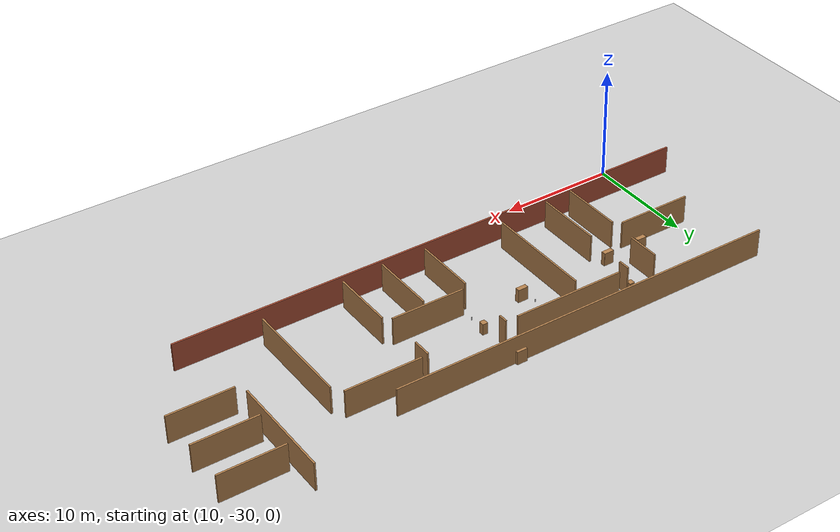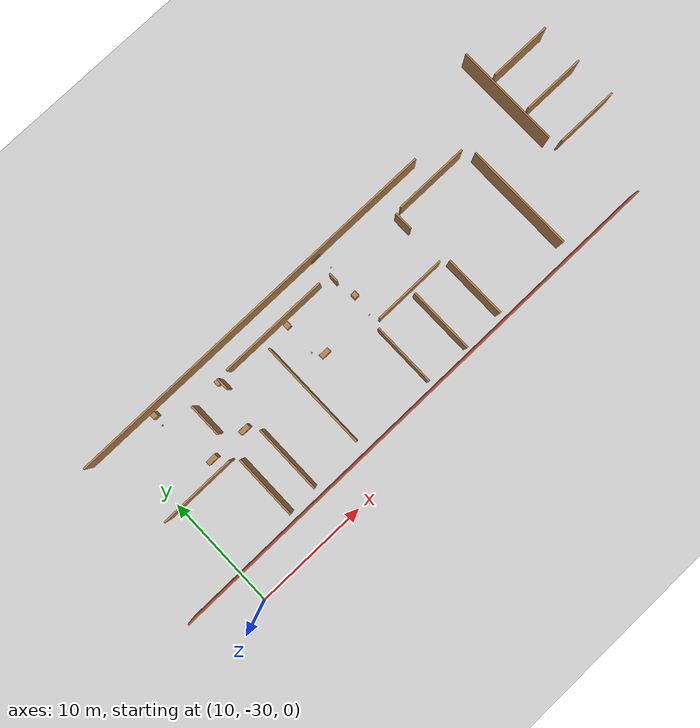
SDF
<sdf version="1.6">
 <world name="default">
  <model name="ground_plane">
   <static>1</static>
   <link name="link">
    <collision name="collision">
     <geometry><plane><normal>0 0 1</normal><size>100 100</size></plane></geometry>
     <surface><friction><ode><mu>100</mu><mu2>50</mu2></ode></friction></surface>
    </collision>
    <visual name="visual">
     <cast_shadows>0</cast_shadows>
     <geometry><plane><normal>0 0 1</normal><size>100 100</size></plane></geometry>
     <material>
      <script><uri>file://media/materials/scripts/gazebo.material</uri><name>Gazebo/Grey</name></script>
     </material>
    </visual>
   </link>
  </model>
  <model name="floorPlan">
   <pose>6.7155 -5.3556 0 0 -0 0</pose>
   <link name="Wall_109">
    <collision name="Wall_109_Collision">
     <geometry><box><size>9.79 0.15 2.5</size></box></geometry>
     <pose>0 0 1.25 0 -0 0</pose>
    </collision>
    <visual name="Wall_109_Visual">
     <pose>0 0 1.25 0 -0 0</pose>
     <geometry><box><size>9.79 0.15 2.5</size></box></geometry>
     <material>
      <script><uri>file://media/materials/scripts/gazebo.material</uri><name>Gazebo/Wood</name></script>
      <ambient>1 1 1 1</ambient>
     </material>
     <meta><layer>0</layer></meta>
    </visual>
    <pose>39.004 -15.7975 0 0 0 -1.5708</pose>
   </link>
   <link name="Wall_111">
    <collision name="Wall_111_Collision">
     <geometry><box><size>6.66 0.15 2.5</size></box></geometry>
     <pose>0 0 1.25 0 -0 0</pose>
    </collision>
    <visual name="Wall_111_Visual">
     <pose>0 0 1.25 0 -0 0</pose>
     <geometry><box><size>6.66 0.15 2.5</size></box></geometry>
     <material>
      <script><uri>file://media/materials/scripts/gazebo.material</uri><name>Gazebo/Wood</name></script>
      <ambient>1 1 1 1</ambient>
     </material>
     <meta><layer>0</layer></meta>
    </visual>
    <pose>35.079 -9.99746 0 0 -0 3.14159</pose>
   </link>
   <link name="Wall_112">
    <collision name="Wall_112_Collision">
     <geometry><box><size>1.67 0.15 2.5</size></box></geometry>
     <pose>0 0 1.25 0 -0 0</pose>
    </collision>
    <visual name="Wall_112_Visual">
     <pose>0 0 1.25 0 -0 0</pose>
     <geometry><box><size>1.67 0.15 2.5</size></box></geometry>
     <material>
      <script><uri>file://media/materials/scripts/gazebo.material</uri><name>Gazebo/Wood</name></script>
      <ambient>1 1 1 1</ambient>
     </material>
     <meta><layer>0</layer></meta>
    </visual>
    <pose>31.154 -10.9225 0 0 0 -1.5708</pose>
   </link>
   <link name="Wall_114">
    <collision name="Wall_114_Collision">
     <geometry><box><size>5.62 0.15 2.5</size></box></geometry>
     <pose>0 0 1.25 0 -0 0</pose>
    </collision>
    <visual name="Wall_114_Visual">
     <pose>0 0 1.25 0 -0 0</pose>
     <geometry><box><size>5.62 0.15 2.5</size></box></geometry>
     <material>
      <script><uri>file://media/materials/scripts/gazebo.material</uri><name>Gazebo/Wood</name></script>
      <ambient>1 1 1 1</ambient>
     </material>
     <meta><layer>0</layer></meta>
    </visual>
    <pose>31.5938 -18.4328 0 0 -0 1.5708</pose>
   </link>
   <link name="Wall_115">
    <collision name="Wall_115_Collision">
     <geometry><box><size>6.46 0.15 2.5</size></box></geometry>
     <pose>0 0 1.25 0 -0 0</pose>
    </collision>
    <visual name="Wall_115_Visual">
     <pose>0 0 1.25 0 -0 0</pose>
     <geometry><box><size>6.46 0.15 2.5</size></box></geometry>
     <material>
      <script><uri>file://media/materials/scripts/gazebo.material</uri><name>Gazebo/Wood</name></script>
      <ambient>1 1 1 1</ambient>
     </material>
     <meta><layer>0</layer></meta>
    </visual>
    <pose>27.7938 -15.1328 0 0 -0 3.14159</pose>
   </link>
   <link name="Wall_116">
    <collision name="Wall_116_Collision">
     <geometry><box><size>5.62 0.15 2.5</size></box></geometry>
     <pose>0 0 1.25 0 -0 0</pose>
    </collision>
    <visual name="Wall_116_Visual">
     <pose>0 0 1.25 0 -0 0</pose>
     <geometry><box><size>5.62 0.15 2.5</size></box></geometry>
     <material>
      <script><uri>file://media/materials/scripts/gazebo.material</uri><name>Gazebo/Wood</name></script>
      <ambient>1 1 1 1</ambient>
     </material>
     <meta><layer>0</layer></meta>
    </visual>
    <pose>23.9938 -18.4328 0 0 0 -1.5708</pose>
   </link>
   <link name="Wall_118">
    <collision name="Wall_118_Collision">
     <geometry><box><size>0.83 0.15 2.5</size></box></geometry>
     <pose>0 0 1.25 0 -0 0</pose>
    </collision>
    <visual name="Wall_118_Visual">
     <pose>0 0 1.25 0 -0 0</pose>
     <geometry><box><size>0.83 0.15 2.5</size></box></geometry>
     <material>
      <script><uri>file://media/materials/scripts/gazebo.material</uri><name>Gazebo/Wood</name></script>
      <ambient>1 1 1 1</ambient>
     </material>
     <meta><layer>0</layer></meta>
    </visual>
    <pose>24.1778 -10.3922 0 0 0 -1.5708</pose>
   </link>
   <link name="Wall_120">
    <collision name="Wall_120_Collision">
     <geometry><box><size>9.79 0.15 2.5</size></box></geometry>
     <pose>0 0 1.25 0 -0 0</pose>
    </collision>
    <visual name="Wall_120_Visual">
     <pose>0 0 1.25 0 -0 0</pose>
     <geometry><box><size>9.79 0.15 2.5</size></box></geometry>
     <material>
      <script><uri>file://media/materials/scripts/gazebo.material</uri><name>Gazebo/Wood</name></script>
      <ambient>1 1 1 1</ambient>
     </material>
     <meta><layer>0</layer></meta>
    </visual>
    <pose>18.2324 -9.96721 0 0 -0 3.14159</pose>
   </link>
   <link name="Wall_121">
    <collision name="Wall_121_Collision">
     <geometry><box><size>1.04 0.15 2.5</size></box></geometry>
     <pose>0 0 1.25 0 -0 0</pose>
    </collision>
    <visual name="Wall_121_Visual">
     <pose>0 0 1.25 0 -0 0</pose>
     <geometry><box><size>1.04 0.15 2.5</size></box></geometry>
     <material>
      <script><uri>file://media/materials/scripts/gazebo.material</uri><name>Gazebo/Wood</name></script>
      <ambient>1 1 1 1</ambient>
     </material>
     <meta><layer>0</layer></meta>
    </visual>
    <pose>12.4324 -10.5172 0 0 0 -1.5708</pose>
   </link>
   <link name="Wall_123">
    <collision name="Wall_123_Collision">
     <geometry><box><size>9.79 0.15 2.5</size></box></geometry>
     <pose>0 0 1.25 0 -0 0</pose>
    </collision>
    <visual name="Wall_123_Visual">
     <pose>0 0 1.25 0 -0 0</pose>
     <geometry><box><size>9.79 0.15 2.5</size></box></geometry>
     <material>
      <script><uri>file://media/materials/scripts/gazebo.material</uri><name>Gazebo/Wood</name></script>
      <ambient>1 1 1 1</ambient>
     </material>
     <meta><layer>0</layer></meta>
    </visual>
    <pose>16.8339 -15.8579 0 0 0 -1.5708</pose>
   </link>
   <link name="Wall_125">
    <collision name="Wall_125_Collision">
     <geometry><box><size>6.04 0.15 2.5</size></box></geometry>
     <pose>0 0 1.25 0 -0 0</pose>
    </collision>
    <visual name="Wall_125_Visual">
     <pose>0 0 1.25 0 -0 0</pose>
     <geometry><box><size>6.04 0.15 2.5</size></box></geometry>
     <material>
      <script><uri>file://media/materials/scripts/gazebo.material</uri><name>Gazebo/Wood</name></script>
      <ambient>1 1 1 1</ambient>
     </material>
     <meta><layer>0</layer></meta>
    </visual>
    <pose>12.1458 -18.0541 0 0 0 -1.5708</pose>
   </link>
   <link name="Wall_231">
    <collision name="Wall_231_Collision">
     <geometry><box><size>6.66 0.15 2.5</size></box></geometry>
     <pose>0 0 1.25 0 -0 0</pose>
    </collision>
    <visual name="Wall_231_Visual">
     <pose>0 0 1.25 0 -0 0</pose>
     <geometry><box><size>6.66 0.15 2.5</size></box></geometry>
     <material>
      <script><uri>file://media/materials/scripts/gazebo.material</uri><name>Gazebo/Wood</name></script>
      <ambient>1 1 1 1</ambient>
     </material>
     <meta><layer>0</layer></meta>
    </visual>
    <pose>5.60281 -15.1351 0 0 -0 0</pose>
   </link>
   <link name="Wall_232">
    <collision name="Wall_232_Collision">
     <geometry><box><size>5.62 0.15 2.5</size></box></geometry>
     <pose>0 0 1.25 0 -0 0</pose>
    </collision>
    <visual name="Wall_232_Visual">
     <pose>0 0 1.25 0 -0 0</pose>
     <geometry><box><size>5.62 0.15 2.5</size></box></geometry>
     <material>
      <script><uri>file://media/materials/scripts/gazebo.material</uri><name>Gazebo/Wood</name></script>
      <ambient>1 1 1 1</ambient>
     </material>
     <meta><layer>0</layer></meta>
    </visual>
    <pose>9.52781 -18.4351 0 0 0 -1.5708</pose>
   </link>
   <link name="Wall_238">
    <collision name="Wall_238_Collision">
     <geometry><box><size>2.92 0.15 2.5</size></box></geometry>
     <pose>0 0 1.25 0 -0 0</pose>
    </collision>
    <visual name="Wall_238_Visual">
     <pose>0 0 1.25 0 -0 0</pose>
     <geometry><box><size>2.92 0.15 2.5</size></box></geometry>
     <material>
      <script><uri>file://media/materials/scripts/gazebo.material</uri><name>Gazebo/Wood</name></script>
      <ambient>1 1 1 1</ambient>
     </material>
     <meta><layer>0</layer></meta>
    </visual>
    <pose>9.61374 -11.5957 0 0 0 -1.5708</pose>
   </link>
   <link name="Wall_242">
    <collision name="Wall_242_Collision">
     <geometry><box><size>5.62 0.15 2.5</size></box></geometry>
     <pose>0 0 1.25 0 -0 0</pose>
    </collision>
    <visual name="Wall_242_Visual">
     <pose>0 0 1.25 0 -0 0</pose>
     <geometry><box><size>5.62 0.15 2.5</size></box></geometry>
     <material>
      <script><uri>file://media/materials/scripts/gazebo.material</uri><name>Gazebo/Wood</name></script>
      <ambient>1 1 1 1</ambient>
     </material>
     <meta><layer>0</layer></meta>
    </visual>
    <pose>47.3564 -11.1866 0 0 -0 0</pose>
   </link>
   <link name="Wall_244">
    <collision name="Wall_244_Collision">
     <geometry><box><size>5.62 0.15 2.5</size></box></geometry>
     <pose>0 0 1.25 0 -0 0</pose>
    </collision>
    <visual name="Wall_244_Visual">
     <pose>0 0 1.25 0 -0 0</pose>
     <geometry><box><size>5.62 0.15 2.5</size></box></geometry>
     <material>
      <script><uri>file://media/materials/scripts/gazebo.material</uri><name>Gazebo/Wood</name></script>
      <ambient>1 1 1 1</ambient>
     </material>
     <meta><layer>0</layer></meta>
    </visual>
    <pose>47.3564 -7.44743 0 0 -0 0</pose>
   </link>
   <link name="Wall_267">
    <collision name="Wall_267_Collision">
     <geometry><box><size>5.83 0.15 2.5</size></box></geometry>
     <pose>0 0 1.25 0 -0 0</pose>
    </collision>
    <visual name="Wall_267_Visual">
     <pose>0 0 1.25 0 -0 0</pose>
     <geometry><box><size>5.83 0.15 2.5</size></box></geometry>
     <material>
      <script><uri>file://media/materials/scripts/gazebo.material</uri><name>Gazebo/Wood</name></script>
      <ambient>1 1 1 1</ambient>
     </material>
     <meta><layer>0</layer></meta>
    </visual>
    <pose>27.8996 -18.4924 0 0 0 -1.5708</pose>
   </link>
   <link name="Wall_28">
    <collision name="Wall_28_Collision">
     <geometry><box><size>34.75 0.15 2.5</size></box></geometry>
     <pose>0 0 1.25 0 -0 0</pose>
    </collision>
    <visual name="Wall_28_Visual">
     <pose>0 0 1.25 0 -0 0</pose>
     <geometry><box><size>34.75 0.15 2.5</size></box></geometry>
     <material>
      <script><uri>file://media/materials/scripts/gazebo.material</uri><name>Gazebo/Wood</name></script>
      <ambient>1 1 1 1</ambient>
     </material>
     <meta><layer>0</layer></meta>
    </visual>
    <pose>17.9067 -8.00732 0 0 0 -8e-06</pose>
   </link>
   <link name="Wall_83">
    <collision name="Wall_83_Collision">
     <geometry><box><size>9.37 0.15 2.5</size></box></geometry>
     <pose>0 0 1.25 0 -0 0</pose>
    </collision>
    <visual name="Wall_83_Visual">
     <pose>0 0 1.25 0 -0 0</pose>
     <geometry><box><size>9.37 0.15 2.5</size></box></geometry>
     <material>
      <script><uri>file://media/materials/scripts/gazebo.material</uri><name>Gazebo/Wood</name></script>
      <ambient>1 1 1 1</ambient>
     </material>
     <meta><layer>0</layer></meta>
    </visual>
    <pose>44.0649 -9.3253 0 0 0 -1.5708</pose>
   </link>
   <link name="Wall_84">
    <collision name="Wall_84_Collision">
     <geometry><box><size>5.62 0.15 2.5</size></box></geometry>
     <pose>0 0 1.25 0 -0 0</pose>
    </collision>
    <visual name="Wall_84_Visual">
     <pose>0 0 1.25 0 -0 0</pose>
     <geometry><box><size>5.62 0.15 2.5</size></box></geometry>
     <material>
      <script><uri>file://media/materials/scripts/gazebo.material</uri><name>Gazebo/Wood</name></script>
      <ambient>1 1 1 1</ambient>
     </material>
     <meta><layer>0</layer></meta>
    </visual>
    <pose>47.3649 -14.8753 0 0 -0 0</pose>
   </link>
   <link name="Wall_91">
    <collision name="Wall_91_Collision">
     <geometry><box><size>47.48 0.15 2.5</size></box></geometry>
     <pose>0 0 1.25 0 -0 0</pose>
    </collision>
    <visual name="Wall_91_Visual">
     <pose>0 0 1.25 0 -0 0</pose>
     <geometry><box><size>47.48 0.15 2.5</size></box></geometry>
     <material>
      <script><uri>file://media/materials/scripts/gazebo.material</uri><name>Gazebo/Bricks</name></script>
      <ambient>1 1 1 1</ambient>
     </material>
     <meta><layer>0</layer></meta>
    </visual>
    <pose>22.3468 -21.8566 0 0 -0 3.14159</pose>
   </link>
   <static>1</static>
  </model>
  <model name="bookshelf_1">
   <static>1</static>
   <link name="link">
    <inertial><mass>1</mass></inertial>
    <collision name="back">
     <pose>0 0.005 0.6 0 -0 0</pose>
     <geometry><box><size>0.9 0.01 1.2</size></box></geometry>
    </collision>
    <visual name="visual1">
     <pose>0 0.005 0.6 0 -0 0</pose>
     <geometry><box><size>0.9 0.01 1.2</size></box></geometry>
     <material>
      <script><uri>file://media/materials/scripts/gazebo.material</uri><name>Gazebo/Wood</name></script>
     </material>
    </visual>
    <collision name="left_side">
     <pose>0.45 -0.195 0.6 0 -0 0</pose>
     <geometry><box><size>0.02 0.4 1.2</size></box></geometry>
    </collision>
    <visual name="visual2">
     <pose>0.45 -0.195 0.6 0 -0 0</pose>
     <geometry><box><size>0.02 0.4 1.2</size></box></geometry>
     <material>
      <script><uri>file://media/materials/scripts/gazebo.material</uri><name>Gazebo/Wood</name></script>
     </material>
    </visual>
    <collision name="right_side">
     <pose>-0.45 -0.195 0.6 0 -0 0</pose>
     <geometry><box><size>0.02 0.4 1.2</size></box></geometry>
    </collision>
    <visual name="visual3">
     <pose>-0.45 -0.195 0.6 0 -0 0</pose>
     <geometry><box><size>0.02 0.4 1.2</size></box></geometry>
     <material>
      <script><uri>file://media/materials/scripts/gazebo.material</uri><name>Gazebo/Wood</name></script>
     </material>
    </visual>
    <collision name="bottom">
     <pose>0 -0.195 0.03 0 -0 0</pose>
     <geometry><box><size>0.88 0.4 0.06</size></box></geometry>
    </collision>
    <visual name="visual4">
     <pose>0 -0.195 0.03 0 -0 0</pose>
     <geometry><box><size>0.88 0.4 0.06</size></box></geometry>
     <material>
      <script><uri>file://media/materials/scripts/gazebo.material</uri><name>Gazebo/Wood</name></script>
     </material>
    </visual>
    <collision name="top">
     <pose>0 -0.195 1.19 0 -0 0</pose>
     <geometry><box><size>0.88 0.4 0.02</size></box></geometry>
    </collision>
    <visual name="visual5">
     <pose>0 -0.195 1.19 0 -0 0</pose>
     <geometry><box><size>0.88 0.4 0.02</size></box></geometry>
     <material>
      <script><uri>file://media/materials/scripts/gazebo.material</uri><name>Gazebo/Wood</name></script>
     </material>
    </visual>
    <collision name="low_shelf">
     <pose>0 -0.195 0.43 0 -0 0</pose>
     <geometry><box><size>0.88 0.4 0.02</size></box></geometry>
    </collision>
    <visual name="visual6">
     <pose>0 -0.195 0.43 0 -0 0</pose>
     <geometry><box><size>0.88 0.4 0.02</size></box></geometry>
     <material>
      <script><uri>file://media/materials/scripts/gazebo.material</uri><name>Gazebo/Wood</name></script>
     </material>
    </visual>
    <collision name="high_shelf">
     <pose>0 -0.195 0.8 0 -0 0</pose>
     <geometry><box><size>0.88 0.4 0.02</size></box></geometry>
    </collision>
    <visual name="visual7">
     <pose>0 -0.195 0.8 0 -0 0</pose>
     <geometry><box><size>0.88 0.4 0.02</size></box></geometry>
     <material>
      <script><uri>file://media/materials/scripts/gazebo.material</uri><name>Gazebo/Wood</name></script>
     </material>
    </visual>
   </link>
   <pose>26.4208 -19.2506 0 0 -0 0</pose>
  </model>
  <model name="bookshelf_2">
   <static>1</static>
   <link name="link">
    <inertial><mass>1</mass></inertial>
    <collision name="back">
     <pose>0 0.005 0.6 0 -0 0</pose>
     <geometry><box><size>0.9 0.01 1.2</size></box></geometry>
    </collision>
    <visual name="visual1">
     <pose>0 0.005 0.6 0 -0 0</pose>
     <geometry><box><size>0.9 0.01 1.2</size></box></geometry>
     <material>
      <script><uri>file://media/materials/scripts/gazebo.material</uri><name>Gazebo/Wood</name></script>
     </material>
    </visual>
    <collision name="left_side">
     <pose>0.45 -0.195 0.6 0 -0 0</pose>
     <geometry><box><size>0.02 0.4 1.2</size></box></geometry>
    </collision>
    <visual name="visual2">
     <pose>0.45 -0.195 0.6 0 -0 0</pose>
     <geometry><box><size>0.02 0.4 1.2</size></box></geometry>
     <material>
      <script><uri>file://media/materials/scripts/gazebo.material</uri><name>Gazebo/Wood</name></script>
     </material>
    </visual>
    <collision name="right_side">
     <pose>-0.45 -0.195 0.6 0 -0 0</pose>
     <geometry><box><size>0.02 0.4 1.2</size></box></geometry>
    </collision>
    <visual name="visual3">
     <pose>-0.45 -0.195 0.6 0 -0 0</pose>
     <geometry><box><size>0.02 0.4 1.2</size></box></geometry>
     <material>
      <script><uri>file://media/materials/scripts/gazebo.material</uri><name>Gazebo/Wood</name></script>
     </material>
    </visual>
    <collision name="bottom">
     <pose>0 -0.195 0.03 0 -0 0</pose>
     <geometry><box><size>0.88 0.4 0.06</size></box></geometry>
    </collision>
    <visual name="visual4">
     <pose>0 -0.195 0.03 0 -0 0</pose>
     <geometry><box><size>0.88 0.4 0.06</size></box></geometry>
     <material>
      <script><uri>file://media/materials/scripts/gazebo.material</uri><name>Gazebo/Wood</name></script>
     </material>
    </visual>
    <collision name="top">
     <pose>0 -0.195 1.19 0 -0 0</pose>
     <geometry><box><size>0.88 0.4 0.02</size></box></geometry>
    </collision>
    <visual name="visual5">
     <pose>0 -0.195 1.19 0 -0 0</pose>
     <geometry><box><size>0.88 0.4 0.02</size></box></geometry>
     <material>
      <script><uri>file://media/materials/scripts/gazebo.material</uri><name>Gazebo/Wood</name></script>
     </material>
    </visual>
    <collision name="low_shelf">
     <pose>0 -0.195 0.43 0 -0 0</pose>
     <geometry><box><size>0.88 0.4 0.02</size></box></geometry>
    </collision>
    <visual name="visual6">
     <pose>0 -0.195 0.43 0 -0 0</pose>
     <geometry><box><size>0.88 0.4 0.02</size></box></geometry>
     <material>
      <script><uri>file://media/materials/scripts/gazebo.material</uri><name>Gazebo/Wood</name></script>
     </material>
    </visual>
    <collision name="high_shelf">
     <pose>0 -0.195 0.8 0 -0 0</pose>
     <geometry><box><size>0.88 0.4 0.02</size></box></geometry>
    </collision>
    <visual name="visual7">
     <pose>0 -0.195 0.8 0 -0 0</pose>
     <geometry><box><size>0.88 0.4 0.02</size></box></geometry>
     <material>
      <script><uri>file://media/materials/scripts/gazebo.material</uri><name>Gazebo/Wood</name></script>
     </material>
    </visual>
   </link>
   <pose>31.0201 -13.074 0 0 -0 0</pose>
  </model>
  <model name="cabinet">
   <static>1</static>
   <link name="cabinet_bottom_plate">
    <inertial>
     <pose>0 0 -1 0 -0 0</pose>
     <inertia><ixx>2.05</ixx><ixy>0</ixy><ixz>0</ixz><iyy>2.05</iyy><iyz>0</iyz><izz>2.05</izz></inertia>
     <mass>25</mass>
    </inertial>
    <collision name="cabinet_bottom_plate_geom">
     <pose>0 0 0.01 0 -0 0</pose>
     <geometry><box><size>0.45 0.45 0.02</size></box></geometry>
    </collision>
    <visual name="cabinet_bottom_plate_geom_visual">
     <pose>0 0 0.01 0 -0 0</pose>
     <geometry><box><size>0.45 0.45 0.02</size></box></geometry>
     <material>
      <script><uri>file://media/materials/scripts/gazebo.material</uri><name>Gazebo/Wood</name></script>
     </material>
    </visual>
    <collision name="cabinet_bottom_plate_geom_cabinet_back_plate">
     <pose>0.235 0 0.51 0 -0 0</pose>
     <geometry><box><size>0.02 0.45 1.02</size></box></geometry>
    </collision>
    <visual name="cabinet_bottom_plate_geom_cabinet_back_plate_visual">
     <pose>0.235 0 0.51 0 -0 0</pose>
     <geometry><box><size>0.02 0.45 1.02</size></box></geometry>
     <material>
      <script><uri>file://media/materials/scripts/gazebo.material</uri><name>Gazebo/Wood</name></script>
     </material>
    </visual>
    <collision name="cabinet_bottom_plate_geom_cabinet_left_plate">
     <pose>0 0.235 0.51 0 -0 0</pose>
     <geometry><box><size>0.45 0.02 1.02</size></box></geometry>
    </collision>
    <visual name="cabinet_bottom_plate_geom_cabinet_left_plate_visual">
     <pose>0 0.235 0.51 0 -0 0</pose>
     <geometry><box><size>0.45 0.02 1.02</size></box></geometry>
     <material>
      <script><uri>file://media/materials/scripts/gazebo.material</uri><name>Gazebo/Wood</name></script>
     </material>
    </visual>
    <collision name="cabinet_bottom_plate_geom_cabinet_middle_plate">
     <pose>0 0 0.51 0 -0 0</pose>
     <geometry><box><size>0.45 0.45 0.02</size></box></geometry>
    </collision>
    <visual name="cabinet_bottom_plate_geom_cabinet_middle_plate_visual">
     <pose>0 0 0.51 0 -0 0</pose>
     <geometry><box><size>0.45 0.45 0.02</size></box></geometry>
     <material>
      <script><uri>file://media/materials/scripts/gazebo.material</uri><name>Gazebo/Wood</name></script>
     </material>
    </visual>
    <collision name="cabinet_bottom_plate_geom_cabinet_right_plate">
     <pose>0 -0.235 0.51 0 -0 0</pose>
     <geometry><box><size>0.45 0.02 1.02</size></box></geometry>
    </collision>
    <visual name="cabinet_bottom_plate_geom_cabinet_right_plate_visual">
     <pose>0 -0.235 0.51 0 -0 0</pose>
     <geometry><box><size>0.45 0.02 1.02</size></box></geometry>
     <material>
      <script><uri>file://media/materials/scripts/gazebo.material</uri><name>Gazebo/Wood</name></script>
     </material>
    </visual>
    <collision name="cabinet_bottom_plate_geom_cabinet_top_plate">
     <pose>0 0 1.01 0 -0 0</pose>
     <geometry><box><size>0.45 0.45 0.02</size></box></geometry>
    </collision>
    <visual name="cabinet_bottom_plate_geom_cabinet_top_plate_visual">
     <pose>0 0 1.01 0 -0 0</pose>
     <geometry><box><size>0.45 0.45 0.02</size></box></geometry>
     <material>
      <script><uri>file://media/materials/scripts/gazebo.material</uri><name>Gazebo/Wood</name></script>
     </material>
    </visual>
   </link>
   <pose>31.28 -17.7291 0 0 -0 0</pose>
  </model>
  <model name="cabinet_0">
   <static>1</static>
   <link name="cabinet_bottom_plate">
    <inertial>
     <pose>0 0 -1 0 -0 0</pose>
     <inertia><ixx>2.05</ixx><ixy>0</ixy><ixz>0</ixz><iyy>2.05</iyy><iyz>0</iyz><izz>2.05</izz></inertia>
     <mass>25</mass>
    </inertial>
    <collision name="cabinet_bottom_plate_geom">
     <pose>0 0 0.01 0 -0 0</pose>
     <geometry><box><size>0.45 0.45 0.02</size></box></geometry>
    </collision>
    <visual name="cabinet_bottom_plate_geom_visual">
     <pose>0 0 0.01 0 -0 0</pose>
     <geometry><box><size>0.45 0.45 0.02</size></box></geometry>
     <material>
      <script><uri>file://media/materials/scripts/gazebo.material</uri><name>Gazebo/Wood</name></script>
     </material>
    </visual>
    <collision name="cabinet_bottom_plate_geom_cabinet_back_plate">
     <pose>0.235 0 0.51 0 -0 0</pose>
     <geometry><box><size>0.02 0.45 1.02</size></box></geometry>
    </collision>
    <visual name="cabinet_bottom_plate_geom_cabinet_back_plate_visual">
     <pose>0.235 0 0.51 0 -0 0</pose>
     <geometry><box><size>0.02 0.45 1.02</size></box></geometry>
     <material>
      <script><uri>file://media/materials/scripts/gazebo.material</uri><name>Gazebo/Wood</name></script>
     </material>
    </visual>
    <collision name="cabinet_bottom_plate_geom_cabinet_left_plate">
     <pose>0 0.235 0.51 0 -0 0</pose>
     <geometry><box><size>0.45 0.02 1.02</size></box></geometry>
    </collision>
    <visual name="cabinet_bottom_plate_geom_cabinet_left_plate_visual">
     <pose>0 0.235 0.51 0 -0 0</pose>
     <geometry><box><size>0.45 0.02 1.02</size></box></geometry>
     <material>
      <script><uri>file://media/materials/scripts/gazebo.material</uri><name>Gazebo/Wood</name></script>
     </material>
    </visual>
    <collision name="cabinet_bottom_plate_geom_cabinet_middle_plate">
     <pose>0 0 0.51 0 -0 0</pose>
     <geometry><box><size>0.45 0.45 0.02</size></box></geometry>
    </collision>
    <visual name="cabinet_bottom_plate_geom_cabinet_middle_plate_visual">
     <pose>0 0 0.51 0 -0 0</pose>
     <geometry><box><size>0.45 0.45 0.02</size></box></geometry>
     <material>
      <script><uri>file://media/materials/scripts/gazebo.material</uri><name>Gazebo/Wood</name></script>
     </material>
    </visual>
    <collision name="cabinet_bottom_plate_geom_cabinet_right_plate">
     <pose>0 -0.235 0.51 0 -0 0</pose>
     <geometry><box><size>0.45 0.02 1.02</size></box></geometry>
    </collision>
    <visual name="cabinet_bottom_plate_geom_cabinet_right_plate_visual">
     <pose>0 -0.235 0.51 0 -0 0</pose>
     <geometry><box><size>0.45 0.02 1.02</size></box></geometry>
     <material>
      <script><uri>file://media/materials/scripts/gazebo.material</uri><name>Gazebo/Wood</name></script>
     </material>
    </visual>
    <collision name="cabinet_bottom_plate_geom_cabinet_top_plate">
     <pose>0 0 1.01 0 -0 0</pose>
     <geometry><box><size>0.45 0.45 0.02</size></box></geometry>
    </collision>
    <visual name="cabinet_bottom_plate_geom_cabinet_top_plate_visual">
     <pose>0 0 1.01 0 -0 0</pose>
     <geometry><box><size>0.45 0.45 0.02</size></box></geometry>
     <material>
      <script><uri>file://media/materials/scripts/gazebo.material</uri><name>Gazebo/Wood</name></script>
     </material>
    </visual>
   </link>
   <pose>25.7729 -15.8118 0 0 -0 0</pose>
  </model>
  <model name="beer">
   <link name="link">
    <pose>0 0 0.115 0 -0 0</pose>
    <inertial>
     <mass>0.39</mass>
     <inertia><ixx>0.00058</ixx><ixy>0</ixy><ixz>0</ixz><iyy>0.00058</iyy><iyz>0</iyz><izz>0.00019</izz></inertia>
    </inertial>
    <collision name="collision">
     <geometry><cylinder><radius>0.055</radius><length>0.23</length></cylinder></geometry>
    </collision>
    <visual name="visual">
     <geometry><cylinder><radius>0.055</radius><length>0.23</length></cylinder></geometry>
     <material>
      <script>
       <uri>model://beer/materials/scripts</uri>
       <uri>model://beer/materials/textures</uri>
       <name>Beer/Diffuse</name>
      </script>
     </material>
    </visual>
   </link>
   <pose>31.0842 -19.594 -7e-06 0 0 -0.000109</pose>
  </model>
  <model name="beer_0">
   <link name="link">
    <pose>0 0 0.115 0 -0 0</pose>
    <inertial>
     <mass>0.39</mass>
     <inertia><ixx>0.00058</ixx><ixy>0</ixy><ixz>0</ixz><iyy>0.00058</iyy><iyz>0</iyz><izz>0.00019</izz></inertia>
    </inertial>
    <collision name="collision">
     <geometry><cylinder><radius>0.055</radius><length>0.23</length></cylinder></geometry>
    </collision>
    <visual name="visual">
     <geometry><cylinder><radius>0.055</radius><length>0.23</length></cylinder></geometry>
     <material>
      <script>
       <uri>model://beer/materials/scripts</uri>
       <uri>model://beer/materials/textures</uri>
       <name>Beer/Diffuse</name>
      </script>
     </material>
    </visual>
   </link>
   <pose>31.49 -14.7142 -2e-06 0 0 -0.00011</pose>
  </model>
  <model name="beer_1">
   <link name="link">
    <pose>0 0 0.115 0 -0 0</pose>
    <inertial>
     <mass>0.39</mass>
     <inertia><ixx>0.00058</ixx><ixy>0</ixy><ixz>0</ixz><iyy>0.00058</iyy><iyz>0</iyz><izz>0.00019</izz></inertia>
    </inertial>
    <collision name="collision">
     <geometry><cylinder><radius>0.055</radius><length>0.23</length></cylinder></geometry>
    </collision>
    <visual name="visual">
     <geometry><cylinder><radius>0.055</radius><length>0.23</length></cylinder></geometry>
     <material>
      <script>
       <uri>model://beer/materials/scripts</uri>
       <uri>model://beer/materials/textures</uri>
       <name>Beer/Diffuse</name>
      </script>
     </material>
    </visual>
   </link>
   <pose>25.6883 -18.6286 -7e-06 0 0 -0.000107</pose>
  </model>
  <model name="cabinet_1">
   <static>1</static>
   <link name="cabinet_bottom_plate">
    <inertial>
     <pose>0 0 -1 0 -0 0</pose>
     <inertia><ixx>2.05</ixx><ixy>0</ixy><ixz>0</ixz><iyy>2.05</iyy><iyz>0</iyz><izz>2.05</izz></inertia>
     <mass>25</mass>
    </inertial>
    <collision name="cabinet_bottom_plate_geom">
     <pose>0 0 0.01 0 -0 0</pose>
     <geometry><box><size>0.45 0.45 0.02</size></box></geometry>
    </collision>
    <visual name="cabinet_bottom_plate_geom_visual">
     <pose>0 0 0.01 0 -0 0</pose>
     <geometry><box><size>0.45 0.45 0.02</size></box></geometry>
     <material>
      <script><uri>file://media/materials/scripts/gazebo.material</uri><name>Gazebo/Wood</name></script>
     </material>
    </visual>
    <collision name="cabinet_bottom_plate_geom_cabinet_back_plate">
     <pose>0.235 0 0.51 0 -0 0</pose>
     <geometry><box><size>0.02 0.45 1.02</size></box></geometry>
    </collision>
    <visual name="cabinet_bottom_plate_geom_cabinet_back_plate_visual">
     <pose>0.235 0 0.51 0 -0 0</pose>
     <geometry><box><size>0.02 0.45 1.02</size></box></geometry>
     <material>
      <script><uri>file://media/materials/scripts/gazebo.material</uri><name>Gazebo/Wood</name></script>
     </material>
    </visual>
    <collision name="cabinet_bottom_plate_geom_cabinet_left_plate">
     <pose>0 0.235 0.51 0 -0 0</pose>
     <geometry><box><size>0.45 0.02 1.02</size></box></geometry>
    </collision>
    <visual name="cabinet_bottom_plate_geom_cabinet_left_plate_visual">
     <pose>0 0.235 0.51 0 -0 0</pose>
     <geometry><box><size>0.45 0.02 1.02</size></box></geometry>
     <material>
      <script><uri>file://media/materials/scripts/gazebo.material</uri><name>Gazebo/Wood</name></script>
     </material>
    </visual>
    <collision name="cabinet_bottom_plate_geom_cabinet_middle_plate">
     <pose>0 0 0.51 0 -0 0</pose>
     <geometry><box><size>0.45 0.45 0.02</size></box></geometry>
    </collision>
    <visual name="cabinet_bottom_plate_geom_cabinet_middle_plate_visual">
     <pose>0 0 0.51 0 -0 0</pose>
     <geometry><box><size>0.45 0.45 0.02</size></box></geometry>
     <material>
      <script><uri>file://media/materials/scripts/gazebo.material</uri><name>Gazebo/Wood</name></script>
     </material>
    </visual>
    <collision name="cabinet_bottom_plate_geom_cabinet_right_plate">
     <pose>0 -0.235 0.51 0 -0 0</pose>
     <geometry><box><size>0.45 0.02 1.02</size></box></geometry>
    </collision>
    <visual name="cabinet_bottom_plate_geom_cabinet_right_plate_visual">
     <pose>0 -0.235 0.51 0 -0 0</pose>
     <geometry><box><size>0.45 0.02 1.02</size></box></geometry>
     <material>
      <script><uri>file://media/materials/scripts/gazebo.material</uri><name>Gazebo/Wood</name></script>
     </material>
    </visual>
    <collision name="cabinet_bottom_plate_geom_cabinet_top_plate">
     <pose>0 0 1.01 0 -0 0</pose>
     <geometry><box><size>0.45 0.45 0.02</size></box></geometry>
    </collision>
    <visual name="cabinet_bottom_plate_geom_cabinet_top_plate_visual">
     <pose>0 0 1.01 0 -0 0</pose>
     <geometry><box><size>0.45 0.45 0.02</size></box></geometry>
     <material>
      <script><uri>file://media/materials/scripts/gazebo.material</uri><name>Gazebo/Wood</name></script>
     </material>
    </visual>
   </link>
   <pose>13.5003 -13.8159 0 0 -0 0</pose>
  </model>
  <model name="cabinet_2">
   <static>1</static>
   <link name="cabinet_bottom_plate">
    <inertial>
     <pose>0 0 -1 0 -0 0</pose>
     <inertia><ixx>2.05</ixx><ixy>0</ixy><ixz>0</ixz><iyy>2.05</iyy><iyz>0</iyz><izz>2.05</izz></inertia>
     <mass>25</mass>
    </inertial>
    <collision name="cabinet_bottom_plate_geom">
     <pose>0 0 0.01 0 -0 0</pose>
     <geometry><box><size>0.45 0.45 0.02</size></box></geometry>
    </collision>
    <visual name="cabinet_bottom_plate_geom_visual">
     <pose>0 0 0.01 0 -0 0</pose>
     <geometry><box><size>0.45 0.45 0.02</size></box></geometry>
     <material>
      <script><uri>file://media/materials/scripts/gazebo.material</uri><name>Gazebo/Wood</name></script>
     </material>
    </visual>
    <collision name="cabinet_bottom_plate_geom_cabinet_back_plate">
     <pose>0.235 0 0.51 0 -0 0</pose>
     <geometry><box><size>0.02 0.45 1.02</size></box></geometry>
    </collision>
    <visual name="cabinet_bottom_plate_geom_cabinet_back_plate_visual">
     <pose>0.235 0 0.51 0 -0 0</pose>
     <geometry><box><size>0.02 0.45 1.02</size></box></geometry>
     <material>
      <script><uri>file://media/materials/scripts/gazebo.material</uri><name>Gazebo/Wood</name></script>
     </material>
    </visual>
    <collision name="cabinet_bottom_plate_geom_cabinet_left_plate">
     <pose>0 0.235 0.51 0 -0 0</pose>
     <geometry><box><size>0.45 0.02 1.02</size></box></geometry>
    </collision>
    <visual name="cabinet_bottom_plate_geom_cabinet_left_plate_visual">
     <pose>0 0.235 0.51 0 -0 0</pose>
     <geometry><box><size>0.45 0.02 1.02</size></box></geometry>
     <material>
      <script><uri>file://media/materials/scripts/gazebo.material</uri><name>Gazebo/Wood</name></script>
     </material>
    </visual>
    <collision name="cabinet_bottom_plate_geom_cabinet_middle_plate">
     <pose>0 0 0.51 0 -0 0</pose>
     <geometry><box><size>0.45 0.45 0.02</size></box></geometry>
    </collision>
    <visual name="cabinet_bottom_plate_geom_cabinet_middle_plate_visual">
     <pose>0 0 0.51 0 -0 0</pose>
     <geometry><box><size>0.45 0.45 0.02</size></box></geometry>
     <material>
      <script><uri>file://media/materials/scripts/gazebo.material</uri><name>Gazebo/Wood</name></script>
     </material>
    </visual>
    <collision name="cabinet_bottom_plate_geom_cabinet_right_plate">
     <pose>0 -0.235 0.51 0 -0 0</pose>
     <geometry><box><size>0.45 0.02 1.02</size></box></geometry>
    </collision>
    <visual name="cabinet_bottom_plate_geom_cabinet_right_plate_visual">
     <pose>0 -0.235 0.51 0 -0 0</pose>
     <geometry><box><size>0.45 0.02 1.02</size></box></geometry>
     <material>
      <script><uri>file://media/materials/scripts/gazebo.material</uri><name>Gazebo/Wood</name></script>
     </material>
    </visual>
    <collision name="cabinet_bottom_plate_geom_cabinet_top_plate">
     <pose>0 0 1.01 0 -0 0</pose>
     <geometry><box><size>0.45 0.45 0.02</size></box></geometry>
    </collision>
    <visual name="cabinet_bottom_plate_geom_cabinet_top_plate_visual">
     <pose>0 0 1.01 0 -0 0</pose>
     <geometry><box><size>0.45 0.45 0.02</size></box></geometry>
     <material>
      <script><uri>file://media/materials/scripts/gazebo.material</uri><name>Gazebo/Wood</name></script>
     </material>
    </visual>
   </link>
   <pose>18.8385 -15.3374 0 0 -0 0</pose>
  </model>
  <model name="bookshelf_4">
   <static>1</static>
   <link name="link">
    <inertial><mass>1</mass></inertial>
    <collision name="back">
     <pose>0 0.005 0.6 0 -0 0</pose>
     <geometry><box><size>0.9 0.01 1.2</size></box></geometry>
    </collision>
    <visual name="visual1">
     <pose>0 0.005 0.6 0 -0 0</pose>
     <geometry><box><size>0.9 0.01 1.2</size></box></geometry>
     <material>
      <script><uri>file://media/materials/scripts/gazebo.material</uri><name>Gazebo/Wood</name></script>
     </material>
    </visual>
    <collision name="left_side">
     <pose>0.45 -0.195 0.6 0 -0 0</pose>
     <geometry><box><size>0.02 0.4 1.2</size></box></geometry>
    </collision>
    <visual name="visual2">
     <pose>0.45 -0.195 0.6 0 -0 0</pose>
     <geometry><box><size>0.02 0.4 1.2</size></box></geometry>
     <material>
      <script><uri>file://media/materials/scripts/gazebo.material</uri><name>Gazebo/Wood</name></script>
     </material>
    </visual>
    <collision name="right_side">
     <pose>-0.45 -0.195 0.6 0 -0 0</pose>
     <geometry><box><size>0.02 0.4 1.2</size></box></geometry>
    </collision>
    <visual name="visual3">
     <pose>-0.45 -0.195 0.6 0 -0 0</pose>
     <geometry><box><size>0.02 0.4 1.2</size></box></geometry>
     <material>
      <script><uri>file://media/materials/scripts/gazebo.material</uri><name>Gazebo/Wood</name></script>
     </material>
    </visual>
    <collision name="bottom">
     <pose>0 -0.195 0.03 0 -0 0</pose>
     <geometry><box><size>0.88 0.4 0.06</size></box></geometry>
    </collision>
    <visual name="visual4">
     <pose>0 -0.195 0.03 0 -0 0</pose>
     <geometry><box><size>0.88 0.4 0.06</size></box></geometry>
     <material>
      <script><uri>file://media/materials/scripts/gazebo.material</uri><name>Gazebo/Wood</name></script>
     </material>
    </visual>
    <collision name="top">
     <pose>0 -0.195 1.19 0 -0 0</pose>
     <geometry><box><size>0.88 0.4 0.02</size></box></geometry>
    </collision>
    <visual name="visual5">
     <pose>0 -0.195 1.19 0 -0 0</pose>
     <geometry><box><size>0.88 0.4 0.02</size></box></geometry>
     <material>
      <script><uri>file://media/materials/scripts/gazebo.material</uri><name>Gazebo/Wood</name></script>
     </material>
    </visual>
    <collision name="low_shelf">
     <pose>0 -0.195 0.43 0 -0 0</pose>
     <geometry><box><size>0.88 0.4 0.02</size></box></geometry>
    </collision>
    <visual name="visual6">
     <pose>0 -0.195 0.43 0 -0 0</pose>
     <geometry><box><size>0.88 0.4 0.02</size></box></geometry>
     <material>
      <script><uri>file://media/materials/scripts/gazebo.material</uri><name>Gazebo/Wood</name></script>
     </material>
    </visual>
    <collision name="high_shelf">
     <pose>0 -0.195 0.8 0 -0 0</pose>
     <geometry><box><size>0.88 0.4 0.02</size></box></geometry>
    </collision>
    <visual name="visual7">
     <pose>0 -0.195 0.8 0 -0 0</pose>
     <geometry><box><size>0.88 0.4 0.02</size></box></geometry>
     <material>
      <script><uri>file://media/materials/scripts/gazebo.material</uri><name>Gazebo/Wood</name></script>
     </material>
    </visual>
   </link>
   <pose>14.5072 -19.2267 0 0 -0 0</pose>
  </model>
  <model name="beer_5">
   <link name="link">
    <pose>0 0 0.115 0 -0 0</pose>
    <inertial>
     <mass>0.39</mass>
     <inertia><ixx>0.00058</ixx><ixy>0</ixy><ixz>0</ixz><iyy>0.00058</iyy><iyz>0</iyz><izz>0.00019</izz></inertia>
    </inertial>
    <collision name="collision">
     <geometry><cylinder><radius>0.055</radius><length>0.23</length></cylinder></geometry>
    </collision>
    <visual name="visual">
     <geometry><cylinder><radius>0.055</radius><length>0.23</length></cylinder></geometry>
     <material>
      <script>
       <uri>model://beer/materials/scripts</uri>
       <uri>model://beer/materials/textures</uri>
       <name>Beer/Diffuse</name>
      </script>
     </material>
    </visual>
   </link>
   <pose>13.2901 -14.7063 -7e-06 0 0 -8.6e-05</pose>
  </model>
  <model name="bookshelf_5">
   <static>1</static>
   <link name="link">
    <inertial><mass>1</mass></inertial>
    <collision name="back">
     <pose>0 0.005 0.6 0 -0 0</pose>
     <geometry><box><size>0.9 0.01 1.2</size></box></geometry>
    </collision>
    <visual name="visual1">
     <pose>0 0.005 0.6 0 -0 0</pose>
     <geometry><box><size>0.9 0.01 1.2</size></box></geometry>
     <material>
      <script><uri>file://media/materials/scripts/gazebo.material</uri><name>Gazebo/Wood</name></script>
     </material>
    </visual>
    <collision name="left_side">
     <pose>0.45 -0.195 0.6 0 -0 0</pose>
     <geometry><box><size>0.02 0.4 1.2</size></box></geometry>
    </collision>
    <visual name="visual2">
     <pose>0.45 -0.195 0.6 0 -0 0</pose>
     <geometry><box><size>0.02 0.4 1.2</size></box></geometry>
     <material>
      <script><uri>file://media/materials/scripts/gazebo.material</uri><name>Gazebo/Wood</name></script>
     </material>
    </visual>
    <collision name="right_side">
     <pose>-0.45 -0.195 0.6 0 -0 0</pose>
     <geometry><box><size>0.02 0.4 1.2</size></box></geometry>
    </collision>
    <visual name="visual3">
     <pose>-0.45 -0.195 0.6 0 -0 0</pose>
     <geometry><box><size>0.02 0.4 1.2</size></box></geometry>
     <material>
      <script><uri>file://media/materials/scripts/gazebo.material</uri><name>Gazebo/Wood</name></script>
     </material>
    </visual>
    <collision name="bottom">
     <pose>0 -0.195 0.03 0 -0 0</pose>
     <geometry><box><size>0.88 0.4 0.06</size></box></geometry>
    </collision>
    <visual name="visual4">
     <pose>0 -0.195 0.03 0 -0 0</pose>
     <geometry><box><size>0.88 0.4 0.06</size></box></geometry>
     <material>
      <script><uri>file://media/materials/scripts/gazebo.material</uri><name>Gazebo/Wood</name></script>
     </material>
    </visual>
    <collision name="top">
     <pose>0 -0.195 1.19 0 -0 0</pose>
     <geometry><box><size>0.88 0.4 0.02</size></box></geometry>
    </collision>
    <visual name="visual5">
     <pose>0 -0.195 1.19 0 -0 0</pose>
     <geometry><box><size>0.88 0.4 0.02</size></box></geometry>
     <material>
      <script><uri>file://media/materials/scripts/gazebo.material</uri><name>Gazebo/Wood</name></script>
     </material>
    </visual>
    <collision name="low_shelf">
     <pose>0 -0.195 0.43 0 -0 0</pose>
     <geometry><box><size>0.88 0.4 0.02</size></box></geometry>
    </collision>
    <visual name="visual6">
     <pose>0 -0.195 0.43 0 -0 0</pose>
     <geometry><box><size>0.88 0.4 0.02</size></box></geometry>
     <material>
      <script><uri>file://media/materials/scripts/gazebo.material</uri><name>Gazebo/Wood</name></script>
     </material>
    </visual>
    <collision name="high_shelf">
     <pose>0 -0.195 0.8 0 -0 0</pose>
     <geometry><box><size>0.88 0.4 0.02</size></box></geometry>
    </collision>
    <visual name="visual7">
     <pose>0 -0.195 0.8 0 -0 0</pose>
     <geometry><box><size>0.88 0.4 0.02</size></box></geometry>
     <material>
      <script><uri>file://media/materials/scripts/gazebo.material</uri><name>Gazebo/Wood</name></script>
     </material>
    </visual>
   </link>
   <pose>17.8761 -19.249 0 0 -0 0</pose>
  </model>
 </world>
</sdf>
